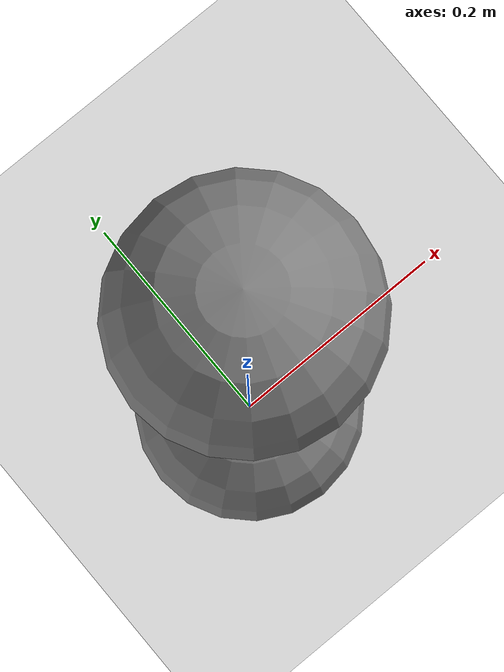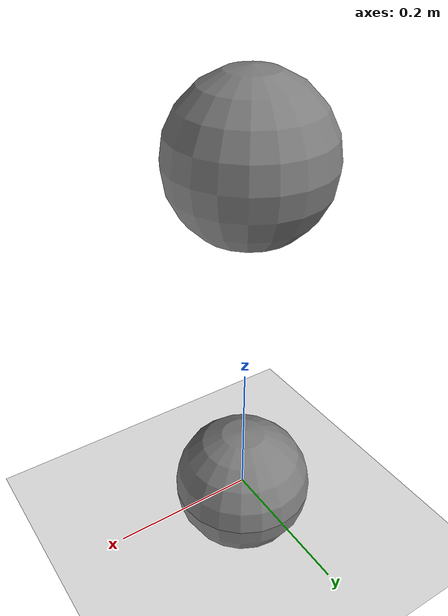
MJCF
<mujoco model="tendon_newton_contact">
            <option timestep="0.001" integrator="implicitspringdamper"
                    solver="Newton" gravity="0 0 -9.81"/>
            <worldbody>
                <geom type="plane" size="5 5 0.1"/>
                <body name="b1" pos="0 0 0.5">
                    <joint name="j0" type="hinge" axis="0 1 0"
                           stiffness="0" damping="0"/>
                    <geom type="sphere" size="0.1" mass="1.0"/>
                    <body name="b2" pos="0 0 -0.5">
                        <joint name="j1" type="hinge" axis="0 1 0"
                               stiffness="0" damping="0"/>
                        <geom type="sphere" size="0.1" mass="1.0"/>
                    </body>
                </body>
            </worldbody>
            <tendon>
                <fixed name="t0" stiffness="100.0" damping="10.0"
                       springlength="0 0">
                    <joint joint="j0" coef="1.0"/>
                    <joint joint="j1" coef="-1.0"/>
                </fixed>
            </tendon>
        </mujoco>
